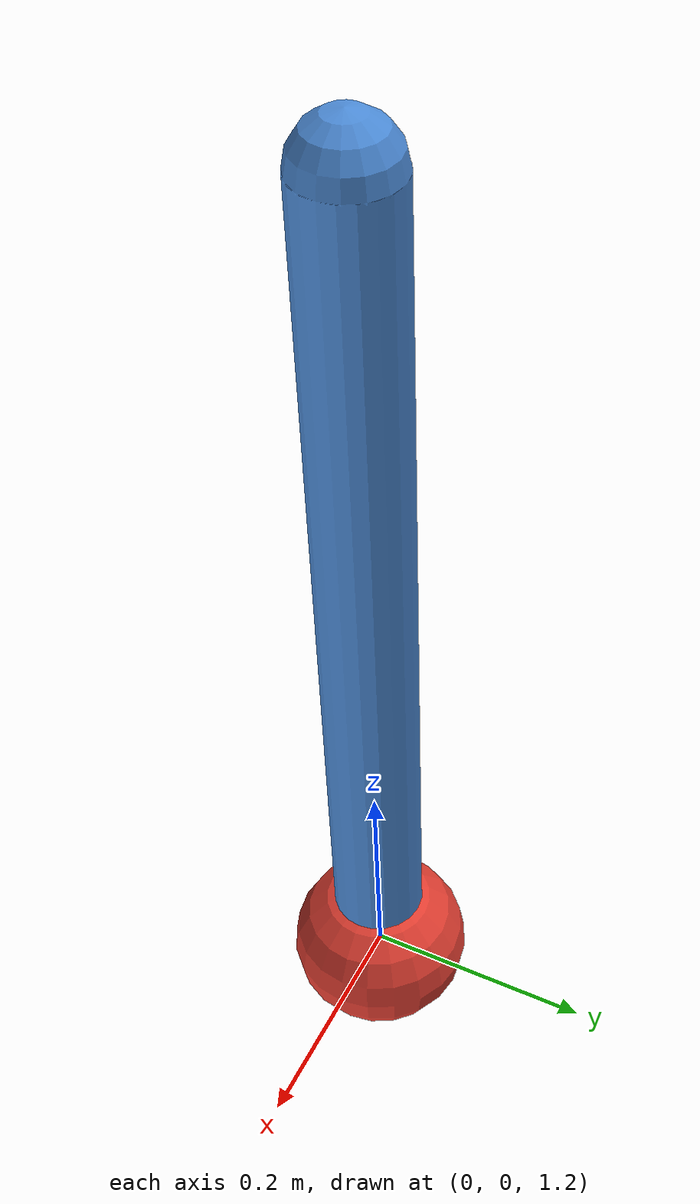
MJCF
<mujoco model="mjcf_pendulum">
    <compiler angle="radian"/>
    <option gravity="0 0 -9.81" timestep="0.002"/>

    <worldbody>
        <!-- Pivot at Z=2, link hangs down along -Z -->
        <body name="link" pos="0 0 2">
            <joint name="hinge" type="hinge" axis="0 1 0"
                   stiffness="2" damping="0.3" springref="0"/>
            <geom name="link_geom" type="capsule" fromto="0 0 0 0 0 -0.8"
                  size="0.04" mass="1.0" rgba="0.3 0.55 0.85 1"/>
            <geom name="bob" type="sphere" pos="0 0 -0.8"
                  size="0.08" mass="0.5" rgba="0.9 0.25 0.2 1"/>
        </body>
    </worldbody>
</mujoco>
